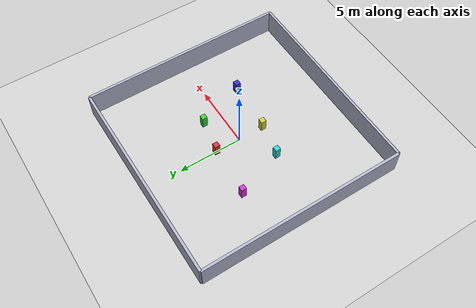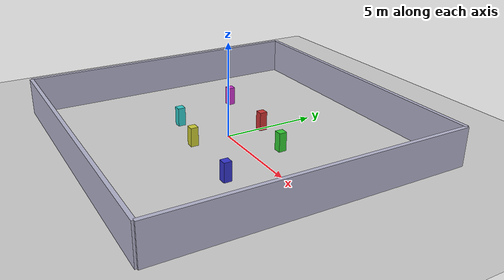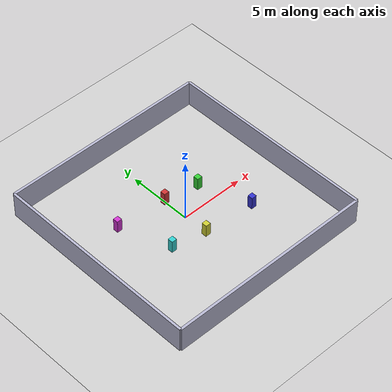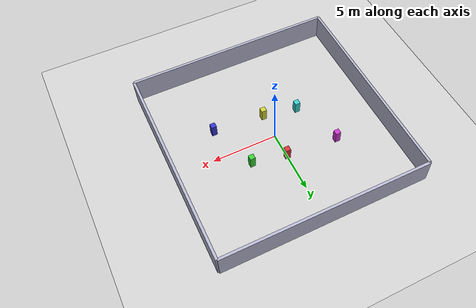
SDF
<?xml version="1.0" ?>
<!--
  PHASE 3 - PARAMETER OPTIMIZATION
  Configuration: 180 samples (2.0°), Mixed distances
  6 boxes distributed 360° at different ranges: 2m, 3m, 4.6m
-->
<sdf version="1.6">
  <world name="phase3_res200deg">

    <include><uri>model://ground_plane</uri></include>
    <include><uri>model://sun</uri></include>

    <!--         ROOM WALLS (8m DISTANCE)      -->

    <model name="pared_norte">
      <static>true</static>
      <pose>0 8 1 0 0 0</pose>
      <link name="link">
        <collision name="collision">
          <geometry><box><size>16 0.2 2</size></box></geometry>
        </collision>
        <visual name="visual">
          <geometry><box><size>16 0.2 2</size></box></geometry>
          <material><ambient>0.7 0.7 0.8 1</ambient></material>
        </visual>
      </link>
    </model>

    <model name="pared_sur">
      <static>true</static>
      <pose>0 -8 1 0 0 0</pose>
      <link name="link">
        <collision name="collision">
          <geometry><box><size>16 0.2 2</size></box></geometry>
        </collision>
        <visual name="visual">
          <geometry><box><size>16 0.2 2</size></box></geometry>
          <material><ambient>0.7 0.7 0.8 1</ambient></material>
        </visual>
      </link>
    </model>

    <model name="pared_este">
      <static>true</static>
      <pose>8 0 1 0 0 1.57</pose>
      <link name="link">
        <collision name="collision">
          <geometry><box><size>16 0.2 2</size></box></geometry>
        </collision>
        <visual name="visual">
          <geometry><box><size>16 0.2 2</size></box></geometry>
          <material><ambient>0.7 0.7 0.8 1</ambient></material>
        </visual>
      </link>
    </model>

    <model name="pared_oeste">
      <static>true</static>
      <pose>-8 0 1 0 0 1.57</pose>
      <link name="link">
        <collision name="collision">
          <geometry><box><size>16 0.2 2</size></box></geometry>
        </collision>
        <visual name="visual">
          <geometry><box><size>16 0.2 2</size></box></geometry>
          <material><ambient>0.7 0.7 0.8 1</ambient></material>
        </visual>
      </link>
    </model>

    <!--  6 BOXES AT MIXED DISTANCES 360°    -->

    <!-- B1: 0°, 2m distance (Red) -->
    <model name="box1_target">
      <static>true</static>
      <pose>0.0 2.0 0.5 0 0 0</pose>
      <link name="link">
        <collision name="collision">
          <geometry><box><size>0.4 0.4 1.0</size></box></geometry>
        </collision>
        <visual name="visual">
          <geometry><box><size>0.4 0.4 1.0</size></box></geometry>
          <material>
            <ambient>0.8 0.2 0.2 1</ambient>
            <diffuse>0.8 0.2 0.2 1</diffuse>
          </material>
        </visual>
      </link>
    </model>

    <!-- B2: 60°, 3m distance (Green) -->
    <model name="box2_target">
      <static>true</static>
      <pose>2.598 1.5 0.5 0 0 0</pose>
      <link name="link">
        <collision name="collision">
          <geometry><box><size>0.4 0.4 1.0</size></box></geometry>
        </collision>
        <visual name="visual">
          <geometry><box><size>0.4 0.4 1.0</size></box></geometry>
          <material>
            <ambient>0.2 0.8 0.2 1</ambient>
            <diffuse>0.2 0.8 0.2 1</diffuse>
          </material>
        </visual>
      </link>
    </model>

    <!-- B3: 120°, 4.6m distance (Blue) -->
    <model name="box3_target">
      <static>true</static>
      <pose>3.984 -2.3 0.5 0 0 0</pose>
      <link name="link">
        <collision name="collision">
          <geometry><box><size>0.4 0.4 1.0</size></box></geometry>
        </collision>
        <visual name="visual">
          <geometry><box><size>0.4 0.4 1.0</size></box></geometry>
          <material>
            <ambient>0.2 0.2 0.8 1</ambient>
            <diffuse>0.2 0.2 0.8 1</diffuse>
          </material>
        </visual>
      </link>
    </model>

    <!-- B4: 180°, 2m distance (Yellow) -->
    <model name="box4_target">
      <static>true</static>
      <pose>0.0 -2.0 0.5 0 0 0</pose>
      <link name="link">
        <collision name="collision">
          <geometry><box><size>0.4 0.4 1.0</size></box></geometry>
        </collision>
        <visual name="visual">
          <geometry><box><size>0.4 0.4 1.0</size></box></geometry>
          <material>
            <ambient>0.8 0.8 0.2 1</ambient>
            <diffuse>0.8 0.8 0.2 1</diffuse>
          </material>
        </visual>
      </link>
    </model>

    <!-- B5: 240°, 3m distance (Cyan) -->
    <model name="box5_target">
      <static>true</static>
      <pose>-2.598 -1.5 0.5 0 0 0</pose>
      <link name="link">
        <collision name="collision">
          <geometry><box><size>0.4 0.4 1.0</size></box></geometry>
        </collision>
        <visual name="visual">
          <geometry><box><size>0.4 0.4 1.0</size></box></geometry>
          <material>
            <ambient>0.2 0.8 0.8 1</ambient>
            <diffuse>0.2 0.8 0.8 1</diffuse>
          </material>
        </visual>
      </link>
    </model>

    <!-- B6: 300°, 4.6m distance (Magenta) -->
    <model name="box6_target">
      <static>true</static>
      <pose>-3.984 2.3 0.5 0 0 0</pose>
      <link name="link">
        <collision name="collision">
          <geometry><box><size>0.4 0.4 1.0</size></box></geometry>
        </collision>
        <visual name="visual">
          <geometry><box><size>0.4 0.4 1.0</size></box></geometry>
          <material>
            <ambient>0.8 0.2 0.8 1</ambient>
            <diffuse>0.8 0.2 0.8 1</diffuse>
          </material>
        </visual>
      </link>
    </model>

    <!--     LIDAR: 180 SAMPLES (2.0°)        -->
    <model name="lidar_estatico">
      <static>true</static>
      <pose>0 0 0.4 0 0 0</pose>
      <link name="link">
        <sensor name="hokuyo" type="ray">
          <pose>0 0 0 0 0 0</pose>
          <visualize>true</visualize>
          <always_on>true</always_on>
          <update_rate>10</update_rate>
          <ray>
            <scan>
              <horizontal>
                <samples>180</samples>
                <resolution>1</resolution>
                <min_angle>-3.14159</min_angle>
                <max_angle>3.14159</max_angle>
              </horizontal>
            </scan>
            <range>
              <min>0.15</min>
              <max>12.0</max>
              <resolution>0.01</resolution>
            </range>
            <noise>
              <type>gaussian</type>
              <mean>0.0</mean>
              <stddev>0.01</stddev>
            </noise>
          </ray>
          <plugin name="lidar_plugin" filename="liblidar_plugin.so"/>
        </sensor>
      </link>
    </model>

  </world>
</sdf>
